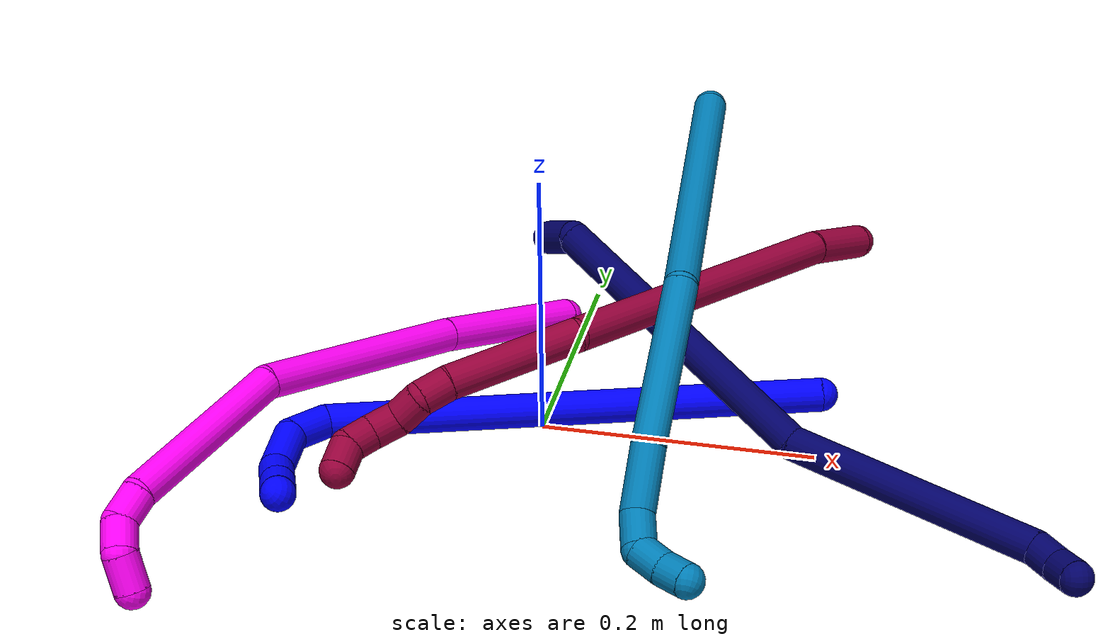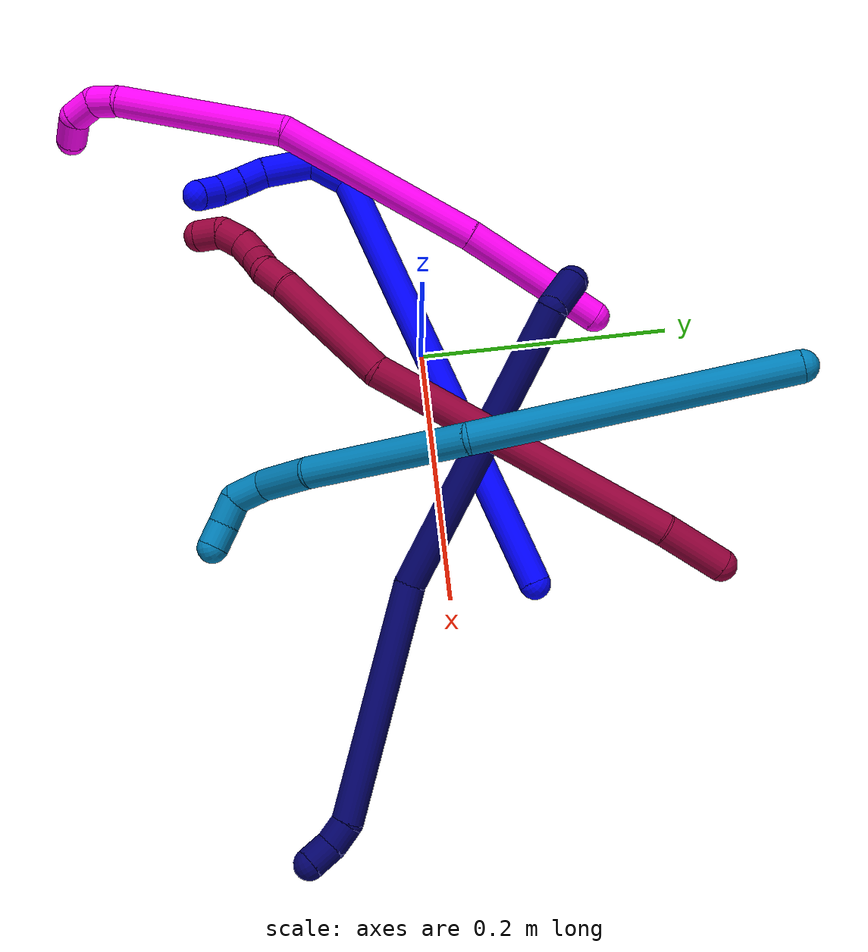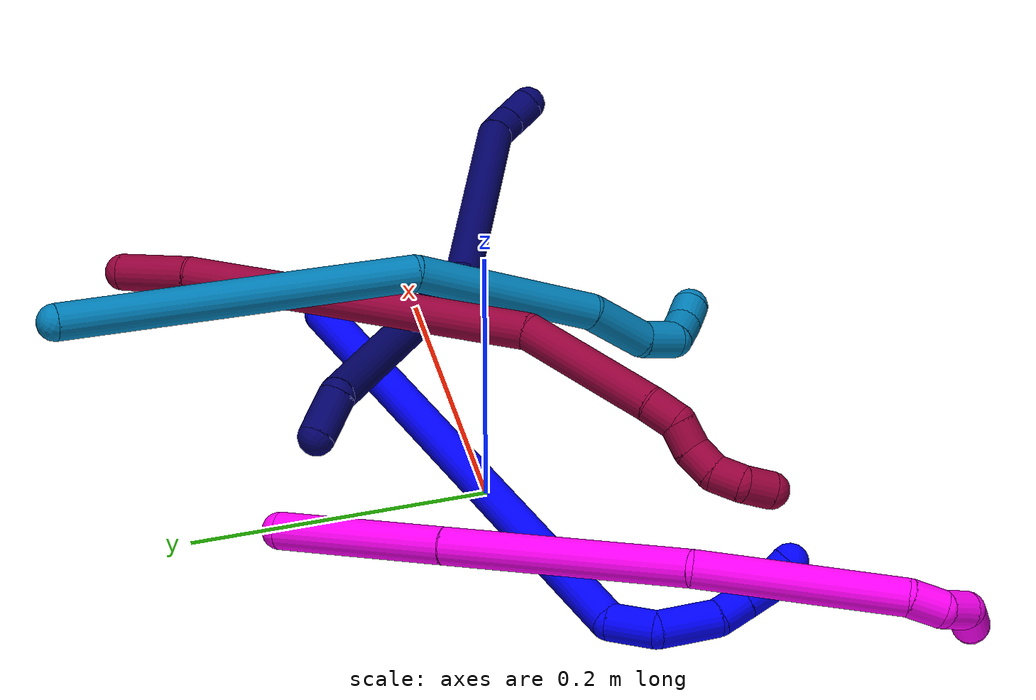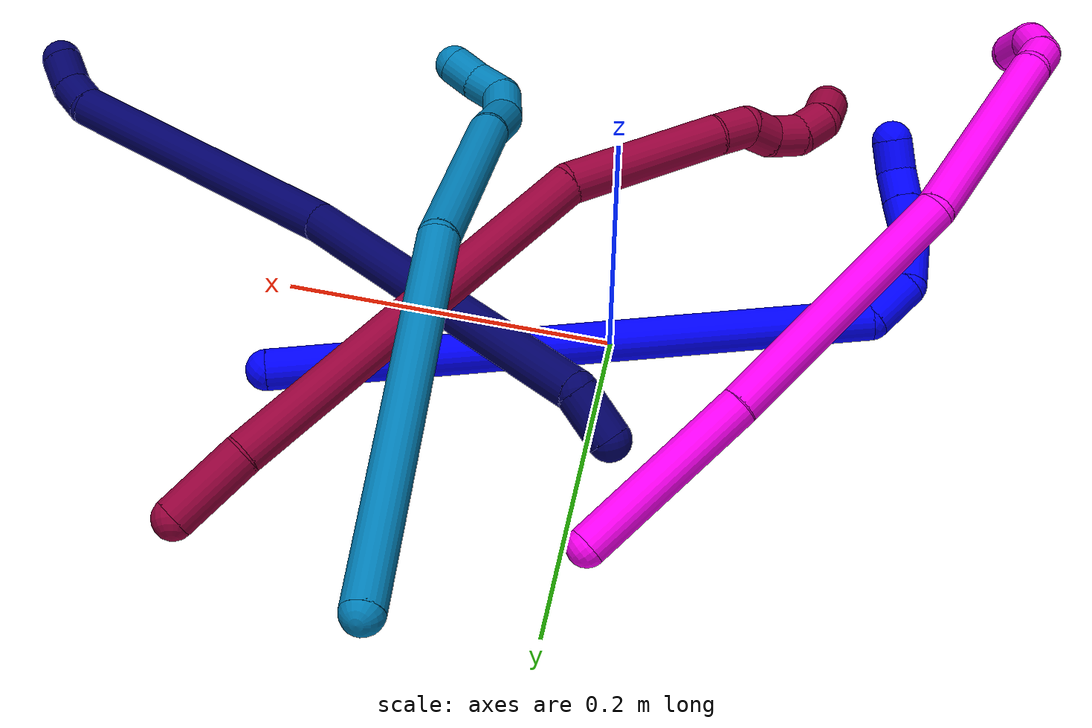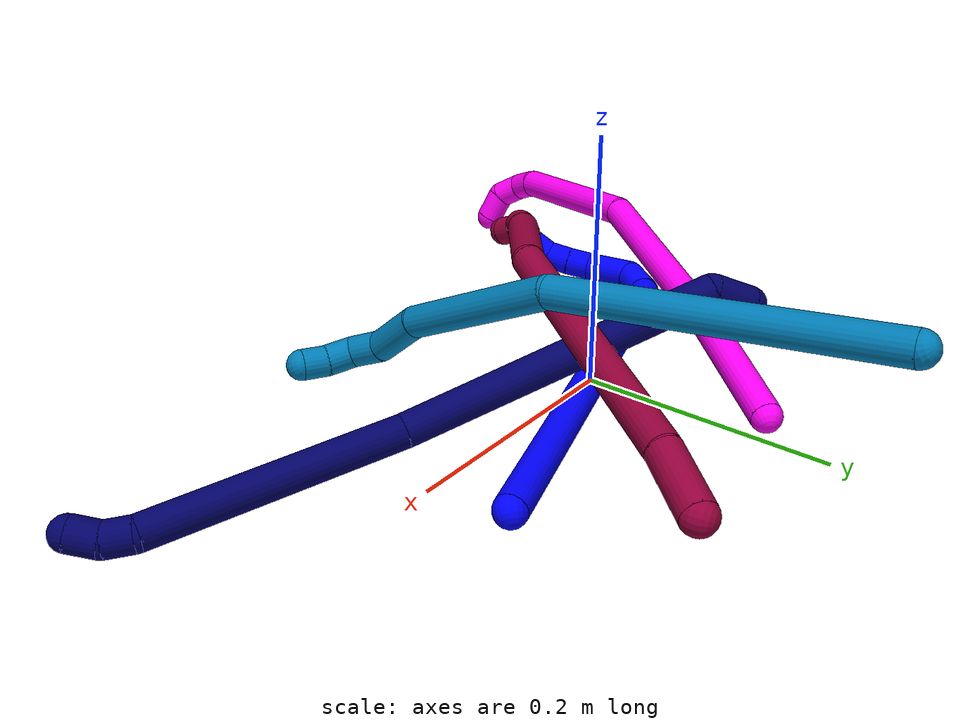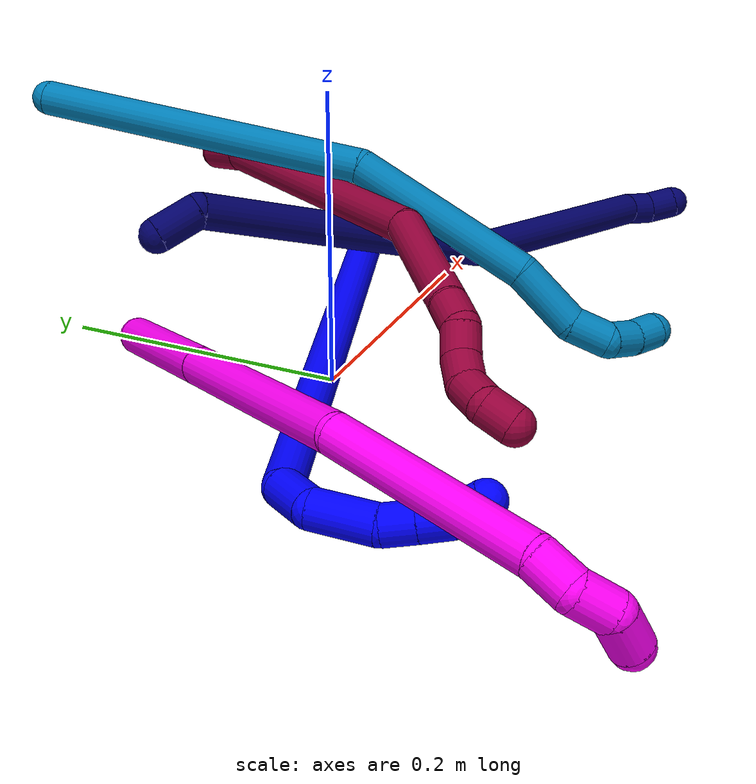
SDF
<sdf version="1.7">
 <world name="default">
  <model name="1">
   <static>0</static>
   <link name="1">
    <collision name="collision-cylinder-e_1_1_4">
     <pose>-0.13863 -0.039307 0.111932 0.337716 -0.86297 -0.156665</pose>
     <geometry><cylinder><radius>0.0125</radius><length>0.364922</length></cylinder></geometry>
     <surface>
      <friction><ode><mu>1.16</mu><mu2>1.16</mu2><slip1>0</slip1><slip2>0</slip2></ode></friction>
      <contact><ode><kp>1e+06</kp><kd>1</kd><max_vel>0</max_vel><min_depth>0.001</min_depth></ode></contact>
     </surface>
    </collision>
    <visual name="visual-cylinder-e_1_1_4">
     <pose>-0.13863 -0.039307 0.111932 0.337716 -0.86297 -0.156665</pose>
     <geometry><cylinder><radius>0.0125</radius><length>0.364922</length></cylinder></geometry>
     <material><ambient>0 0 1 1</ambient></material>
    </visual>
    <collision name="collision-cylinder-e_2_4_5">
     <pose>-0.280774 -0.087796 0.236641 0.623129 -0.219778 -0.071037</pose>
     <geometry><cylinder><radius>0.0125</radius><length>0.032243</length></cylinder></geometry>
     <surface>
      <friction><ode><mu>1.16</mu><mu2>1.16</mu2><slip1>0</slip1><slip2>0</slip2></ode></friction>
      <contact><ode><kp>1e+06</kp><kd>1</kd><max_vel>0</max_vel><min_depth>0.001</min_depth></ode></contact>
     </surface>
    </collision>
    <visual name="visual-cylinder-e_2_4_5">
     <pose>-0.280774 -0.087796 0.236641 0.623129 -0.219778 -0.071037</pose>
     <geometry><cylinder><radius>0.0125</radius><length>0.032243</length></cylinder></geometry>
     <material><ambient>0 0 1 1</ambient></material>
    </visual>
    <collision name="collision-cylinder-e_3_5_6">
     <pose>-0.277468 -0.113228 0.260163 0.986525 0.336753 0.182258</pose>
     <geometry><cylinder><radius>0.0125</radius><length>0.041281</length></cylinder></geometry>
     <surface>
      <friction><ode><mu>1.16</mu><mu2>1.16</mu2><slip1>0</slip1><slip2>0</slip2></ode></friction>
      <contact><ode><kp>1e+06</kp><kd>1</kd><max_vel>0</max_vel><min_depth>0.001</min_depth></ode></contact>
     </surface>
    </collision>
    <visual name="visual-cylinder-e_3_5_6">
     <pose>-0.277468 -0.113228 0.260163 0.986525 0.336753 0.182258</pose>
     <geometry><cylinder><radius>0.0125</radius><length>0.041281</length></cylinder></geometry>
     <material><ambient>0 0 1 1</ambient></material>
    </visual>
    <collision name="collision-cylinder-e_4_6_7">
     <pose>-0.263941 -0.135863 0.275853 0.911928 0.693061 0.350557</pose>
     <geometry><cylinder><radius>0.0125</radius><length>0.020996</length></cylinder></geometry>
     <surface>
      <friction><ode><mu>1.16</mu><mu2>1.16</mu2><slip1>0</slip1><slip2>0</slip2></ode></friction>
      <contact><ode><kp>1e+06</kp><kd>1</kd><max_vel>0</max_vel><min_depth>0.001</min_depth></ode></contact>
     </surface>
    </collision>
    <visual name="visual-cylinder-e_4_6_7">
     <pose>-0.263941 -0.135863 0.275853 0.911928 0.693061 0.350557</pose>
     <geometry><cylinder><radius>0.0125</radius><length>0.020996</length></cylinder></geometry>
     <material><ambient>0 0 1 1</ambient></material>
    </visual>
    <collision name="collision-cylinder-e_5_7_8">
     <pose>-0.250808 -0.148186 0.286008 0.850583 0.682861 0.319161</pose>
     <geometry><cylinder><radius>0.0125</radius><length>0.020367</length></cylinder></geometry>
     <surface>
      <friction><ode><mu>1.16</mu><mu2>1.16</mu2><slip1>0</slip1><slip2>0</slip2></ode></friction>
      <contact><ode><kp>1e+06</kp><kd>1</kd><max_vel>0</max_vel><min_depth>0.001</min_depth></ode></contact>
     </surface>
    </collision>
    <visual name="visual-cylinder-e_5_7_8">
     <pose>-0.250808 -0.148186 0.286008 0.850583 0.682861 0.319161</pose>
     <geometry><cylinder><radius>0.0125</radius><length>0.020367</length></cylinder></geometry>
     <material><ambient>0 0 1 1</ambient></material>
    </visual>
    <collision name="collision-cylinder-e_6_8_2">
     <pose>-0.237422 -0.156578 0.298108 0.342076 0.760672 0.137893</pose>
     <geometry><cylinder><radius>0.0125</radius><length>0.020191</length></cylinder></geometry>
     <surface>
      <friction><ode><mu>1.16</mu><mu2>1.16</mu2><slip1>0</slip1><slip2>0</slip2></ode></friction>
      <contact><ode><kp>1e+06</kp><kd>1</kd><max_vel>0</max_vel><min_depth>0.001</min_depth></ode></contact>
     </surface>
    </collision>
    <visual name="visual-cylinder-e_6_8_2">
     <pose>-0.237422 -0.156578 0.298108 0.342076 0.760672 0.137893</pose>
     <geometry><cylinder><radius>0.0125</radius><length>0.020191</length></cylinder></geometry>
     <material><ambient>0 0 1 1</ambient></material>
    </visual>
    <collision name="collision-sphere-2">
     <pose>-0.230462 -0.159031 0.304997 0 -0 0</pose>
     <geometry><sphere><radius>0.0125</radius></sphere></geometry>
     <surface>
      <friction><ode><mu>1.16</mu><mu2>1.16</mu2><slip1>0</slip1><slip2>0</slip2></ode></friction>
      <contact><ode><kp>1e+06</kp><kd>1</kd><max_vel>0</max_vel><min_depth>0.001</min_depth></ode></contact>
     </surface>
    </collision>
    <visual name="visual-sphere-2">
     <pose>-0.230462 -0.159031 0.304997 0 -0 0</pose>
     <geometry><sphere><radius>0.0125</radius></sphere></geometry>
     <material><ambient>0 0 1 1</ambient></material>
    </visual>
    <collision name="collision-sphere-4">
     <pose>-0.277259 -0.078614 0.223864 0 -0 0</pose>
     <geometry><sphere><radius>0.0125</radius></sphere></geometry>
     <surface>
      <friction><ode><mu>1.16</mu><mu2>1.16</mu2><slip1>0</slip1><slip2>0</slip2></ode></friction>
      <contact><ode><kp>1e+06</kp><kd>1</kd><max_vel>0</max_vel><min_depth>0.001</min_depth></ode></contact>
     </surface>
    </collision>
    <visual name="visual-sphere-4">
     <pose>-0.277259 -0.078614 0.223864 0 -0 0</pose>
     <geometry><sphere><radius>0.0125</radius></sphere></geometry>
     <material><ambient>0 0 1 1</ambient></material>
    </visual>
    <collision name="collision-sphere-1">
     <geometry><sphere><radius>0.0125</radius></sphere></geometry>
     <surface>
      <friction><ode><mu>1.16</mu><mu2>1.16</mu2><slip1>0</slip1><slip2>0</slip2></ode></friction>
      <contact><ode><kp>1e+06</kp><kd>1</kd><max_vel>0</max_vel><min_depth>0.001</min_depth></ode></contact>
     </surface>
    </collision>
    <visual name="visual-sphere-1">
     <geometry><sphere><radius>0.0125</radius></sphere></geometry>
     <material><ambient>0 0 1 1</ambient></material>
    </visual>
    <collision name="collision-sphere-8">
     <pose>-0.244382 -0.154125 0.291218 0 -0 0</pose>
     <geometry><sphere><radius>0.0125</radius></sphere></geometry>
     <surface>
      <friction><ode><mu>1.16</mu><mu2>1.16</mu2><slip1>0</slip1><slip2>0</slip2></ode></friction>
      <contact><ode><kp>1e+06</kp><kd>1</kd><max_vel>0</max_vel><min_depth>0.001</min_depth></ode></contact>
     </surface>
    </collision>
    <visual name="visual-sphere-8">
     <pose>-0.244382 -0.154125 0.291218 0 -0 0</pose>
     <geometry><sphere><radius>0.0125</radius></sphere></geometry>
     <material><ambient>0 0 1 1</ambient></material>
    </visual>
    <collision name="collision-sphere-5">
     <pose>-0.284289 -0.096978 0.249418 0 -0 0</pose>
     <geometry><sphere><radius>0.0125</radius></sphere></geometry>
     <surface>
      <friction><ode><mu>1.16</mu><mu2>1.16</mu2><slip1>0</slip1><slip2>0</slip2></ode></friction>
      <contact><ode><kp>1e+06</kp><kd>1</kd><max_vel>0</max_vel><min_depth>0.001</min_depth></ode></contact>
     </surface>
    </collision>
    <visual name="visual-sphere-5">
     <pose>-0.284289 -0.096978 0.249418 0 -0 0</pose>
     <geometry><sphere><radius>0.0125</radius></sphere></geometry>
     <material><ambient>0 0 1 1</ambient></material>
    </visual>
    <collision name="collision-sphere-6">
     <pose>-0.270648 -0.129477 0.270909 0 -0 0</pose>
     <geometry><sphere><radius>0.0125</radius></sphere></geometry>
     <surface>
      <friction><ode><mu>1.16</mu><mu2>1.16</mu2><slip1>0</slip1><slip2>0</slip2></ode></friction>
      <contact><ode><kp>1e+06</kp><kd>1</kd><max_vel>0</max_vel><min_depth>0.001</min_depth></ode></contact>
     </surface>
    </collision>
    <visual name="visual-sphere-6">
     <pose>-0.270648 -0.129477 0.270909 0 -0 0</pose>
     <geometry><sphere><radius>0.0125</radius></sphere></geometry>
     <material><ambient>0 0 1 1</ambient></material>
    </visual>
    <collision name="collision-sphere-7">
     <pose>-0.257234 -0.142248 0.280797 0 -0 0</pose>
     <geometry><sphere><radius>0.0125</radius></sphere></geometry>
     <surface>
      <friction><ode><mu>1.16</mu><mu2>1.16</mu2><slip1>0</slip1><slip2>0</slip2></ode></friction>
      <contact><ode><kp>1e+06</kp><kd>1</kd><max_vel>0</max_vel><min_depth>0.001</min_depth></ode></contact>
     </surface>
    </collision>
    <visual name="visual-sphere-7">
     <pose>-0.257234 -0.142248 0.280797 0 -0 0</pose>
     <geometry><sphere><radius>0.0125</radius></sphere></geometry>
     <material><ambient>0 0 1 1</ambient></material>
    </visual>
    <inertial>
     <pose>-0.17308 -0.061762 0.153705 0 -0 0</pose>
     <mass>0.5</mass>
     <inertia>
      <ixx>0.002196</ixx>
      <ixy>0</ixy>
      <ixz>0</ixz>
      <iyy>0.003536</iyy>
      <iyz>0</iyz>
      <izz>0.003993</izz>
     </inertia>
    </inertial>
   </link>
   <pose>0.195805 0.067529 0.011492 0.768858 -0.36561 -0.31183</pose>
  </model>
  <model name="7">
   <static>0</static>
   <link name="7">
    <collision name="collision-cylinder-e_1_1_4">
     <pose>0.007251 -0.012944 0.006146 1.12754 0.468454 0.299442</pose>
     <geometry><cylinder><radius>0.0125</radius><length>0.032118</length></cylinder></geometry>
     <surface>
      <friction><ode><mu>1.16</mu><mu2>1.16</mu2><slip1>0</slip1><slip2>0</slip2></ode></friction>
      <contact><ode><kp>1e+06</kp><kd>1</kd><max_vel>0</max_vel><min_depth>0.001</min_depth></ode></contact>
     </surface>
    </collision>
    <visual name="visual-cylinder-e_1_1_4">
     <pose>0.007251 -0.012944 0.006146 1.12754 0.468454 0.299442</pose>
     <geometry><cylinder><radius>0.0125</radius><length>0.032118</length></cylinder></geometry>
     <material><ambient>0.003922 0 0.403922 1</ambient></material>
    </visual>
    <collision name="collision-cylinder-e_2_4_5">
     <pose>0.111622 -0.051093 0.076488 0.374122 0.95331 0.194851</pose>
     <geometry><cylinder><radius>0.0125</radius><length>0.238233</length></cylinder></geometry>
     <surface>
      <friction><ode><mu>1.16</mu><mu2>1.16</mu2><slip1>0</slip1><slip2>0</slip2></ode></friction>
      <contact><ode><kp>1e+06</kp><kd>1</kd><max_vel>0</max_vel><min_depth>0.001</min_depth></ode></contact>
     </surface>
    </collision>
    <visual name="visual-cylinder-e_2_4_5">
     <pose>0.111622 -0.051093 0.076488 0.374122 0.95331 0.194851</pose>
     <geometry><cylinder><radius>0.0125</radius><length>0.238233</length></cylinder></geometry>
     <material><ambient>0.003922 0 0.403922 1</ambient></material>
    </visual>
    <collision name="collision-cylinder-e_3_5_6">
     <pose>0.26395 -0.109962 0.208358 0.461607 0.630845 0.153064</pose>
     <geometry><cylinder><radius>0.0125</radius><length>0.187199</length></cylinder></geometry>
     <surface>
      <friction><ode><mu>1.16</mu><mu2>1.16</mu2><slip1>0</slip1><slip2>0</slip2></ode></friction>
      <contact><ode><kp>1e+06</kp><kd>1</kd><max_vel>0</max_vel><min_depth>0.001</min_depth></ode></contact>
     </surface>
    </collision>
    <visual name="visual-cylinder-e_3_5_6">
     <pose>0.26395 -0.109962 0.208358 0.461607 0.630845 0.153064</pose>
     <geometry><cylinder><radius>0.0125</radius><length>0.187199</length></cylinder></geometry>
     <material><ambient>0.003922 0 0.403922 1</ambient></material>
    </visual>
    <collision name="collision-cylinder-e_4_6_7">
     <pose>0.327436 -0.148185 0.280487 0.796863 0.914595 0.408507</pose>
     <geometry><cylinder><radius>0.0125</radius><length>0.020899</length></cylinder></geometry>
     <surface>
      <friction><ode><mu>1.16</mu><mu2>1.16</mu2><slip1>0</slip1><slip2>0</slip2></ode></friction>
      <contact><ode><kp>1e+06</kp><kd>1</kd><max_vel>0</max_vel><min_depth>0.001</min_depth></ode></contact>
     </surface>
    </collision>
    <visual name="visual-cylinder-e_4_6_7">
     <pose>0.327436 -0.148185 0.280487 0.796863 0.914595 0.408507</pose>
     <geometry><cylinder><radius>0.0125</radius><length>0.020899</length></cylinder></geometry>
     <material><ambient>0.003922 0 0.403922 1</ambient></material>
    </visual>
    <collision name="collision-cylinder-e_5_7_2">
     <pose>0.343191 -0.160256 0.286892 1.31696 0.766762 0.604955</pose>
     <geometry><cylinder><radius>0.0125</radius><length>0.021551</length></cylinder></geometry>
     <surface>
      <friction><ode><mu>1.16</mu><mu2>1.16</mu2><slip1>0</slip1><slip2>0</slip2></ode></friction>
      <contact><ode><kp>1e+06</kp><kd>1</kd><max_vel>0</max_vel><min_depth>0.001</min_depth></ode></contact>
     </surface>
    </collision>
    <visual name="visual-cylinder-e_5_7_2">
     <pose>0.343191 -0.160256 0.286892 1.31696 0.766762 0.604955</pose>
     <geometry><cylinder><radius>0.0125</radius><length>0.021551</length></cylinder></geometry>
     <material><ambient>0.003922 0 0.403922 1</ambient></material>
    </visual>
    <collision name="collision-sphere-2">
     <pose>0.350667 -0.167767 0.288841 0 -0 0</pose>
     <geometry><sphere><radius>0.0125</radius></sphere></geometry>
     <surface>
      <friction><ode><mu>1.16</mu><mu2>1.16</mu2><slip1>0</slip1><slip2>0</slip2></ode></friction>
      <contact><ode><kp>1e+06</kp><kd>1</kd><max_vel>0</max_vel><min_depth>0.001</min_depth></ode></contact>
     </surface>
    </collision>
    <visual name="visual-sphere-2">
     <pose>0.350667 -0.167767 0.288841 0 -0 0</pose>
     <geometry><sphere><radius>0.0125</radius></sphere></geometry>
     <material><ambient>0.003922 0 0.403922 1</ambient></material>
    </visual>
    <collision name="collision-sphere-7">
     <pose>0.335715 -0.152745 0.284943 0 -0 0</pose>
     <geometry><sphere><radius>0.0125</radius></sphere></geometry>
     <surface>
      <friction><ode><mu>1.16</mu><mu2>1.16</mu2><slip1>0</slip1><slip2>0</slip2></ode></friction>
      <contact><ode><kp>1e+06</kp><kd>1</kd><max_vel>0</max_vel><min_depth>0.001</min_depth></ode></contact>
     </surface>
    </collision>
    <visual name="visual-sphere-7">
     <pose>0.335715 -0.152745 0.284943 0 -0 0</pose>
     <geometry><sphere><radius>0.0125</radius></sphere></geometry>
     <material><ambient>0.003922 0 0.403922 1</ambient></material>
    </visual>
    <collision name="collision-sphere-6">
     <pose>0.319157 -0.143626 0.276031 0 -0 0</pose>
     <geometry><sphere><radius>0.0125</radius></sphere></geometry>
     <surface>
      <friction><ode><mu>1.16</mu><mu2>1.16</mu2><slip1>0</slip1><slip2>0</slip2></ode></friction>
      <contact><ode><kp>1e+06</kp><kd>1</kd><max_vel>0</max_vel><min_depth>0.001</min_depth></ode></contact>
     </surface>
    </collision>
    <visual name="visual-sphere-6">
     <pose>0.319157 -0.143626 0.276031 0 -0 0</pose>
     <geometry><sphere><radius>0.0125</radius></sphere></geometry>
     <material><ambient>0.003922 0 0.403922 1</ambient></material>
    </visual>
    <collision name="collision-sphere-5">
     <pose>0.208742 -0.076297 0.140684 0 -0 0</pose>
     <geometry><sphere><radius>0.0125</radius></sphere></geometry>
     <surface>
      <friction><ode><mu>1.16</mu><mu2>1.16</mu2><slip1>0</slip1><slip2>0</slip2></ode></friction>
      <contact><ode><kp>1e+06</kp><kd>1</kd><max_vel>0</max_vel><min_depth>0.001</min_depth></ode></contact>
     </surface>
    </collision>
    <visual name="visual-sphere-5">
     <pose>0.208742 -0.076297 0.140684 0 -0 0</pose>
     <geometry><sphere><radius>0.0125</radius></sphere></geometry>
     <material><ambient>0.003922 0 0.403922 1</ambient></material>
    </visual>
    <collision name="collision-sphere-1">
     <geometry><sphere><radius>0.0125</radius></sphere></geometry>
     <surface>
      <friction><ode><mu>1.16</mu><mu2>1.16</mu2><slip1>0</slip1><slip2>0</slip2></ode></friction>
      <contact><ode><kp>1e+06</kp><kd>1</kd><max_vel>0</max_vel><min_depth>0.001</min_depth></ode></contact>
     </surface>
    </collision>
    <visual name="visual-sphere-1">
     <geometry><sphere><radius>0.0125</radius></sphere></geometry>
     <material><ambient>0.003922 0 0.403922 1</ambient></material>
    </visual>
    <collision name="collision-sphere-4">
     <pose>0.014502 -0.025888 0.012291 0 -0 0</pose>
     <geometry><sphere><radius>0.0125</radius></sphere></geometry>
     <surface>
      <friction><ode><mu>1.16</mu><mu2>1.16</mu2><slip1>0</slip1><slip2>0</slip2></ode></friction>
      <contact><ode><kp>1e+06</kp><kd>1</kd><max_vel>0</max_vel><min_depth>0.001</min_depth></ode></contact>
     </surface>
    </collision>
    <visual name="visual-sphere-4">
     <pose>0.014502 -0.025888 0.012291 0 -0 0</pose>
     <geometry><sphere><radius>0.0125</radius></sphere></geometry>
     <material><ambient>0.003922 0 0.403922 1</ambient></material>
    </visual>
    <inertial>
     <pose>0.18095 -0.079446 0.138936 0 -0 0</pose>
     <mass>0.5</mass>
     <inertia>
      <ixx>0.001318</ixx>
      <ixy>0</ixy>
      <ixz>0</ixz>
      <iyy>0.001804</iyy>
      <iyz>0</iyz>
      <izz>-0.00079</izz>
     </inertia>
    </inertial>
   </link>
   <pose>-0.020948 0.117548 0.093057 -1.68746 0.570558 -1.23812</pose>
  </model>
  <model name="8">
   <static>0</static>
   <link name="8">
    <collision name="collision-cylinder-e_1_1_4">
     <pose>-0.016916 -0.009461 0.016812 0.512584 -0.719871 -0.196602</pose>
     <geometry><cylinder><radius>0.0125</radius><length>0.051316</length></cylinder></geometry>
     <surface>
      <friction><ode><mu>1.16</mu><mu2>1.16</mu2><slip1>0</slip1><slip2>0</slip2></ode></friction>
      <contact><ode><kp>1e+06</kp><kd>1</kd><max_vel>0</max_vel><min_depth>0.001</min_depth></ode></contact>
     </surface>
    </collision>
    <visual name="visual-cylinder-e_1_1_4">
     <pose>-0.016916 -0.009461 0.016812 0.512584 -0.719871 -0.196602</pose>
     <geometry><cylinder><radius>0.0125</radius><length>0.051316</length></cylinder></geometry>
     <material><ambient>0.584314 0 0.227451 1</ambient></material>
    </visual>
    <collision name="collision-cylinder-e_2_4_5">
     <pose>-0.102212 -0.079035 0.115961 0.63063 -0.590828 -0.197888</pose>
     <geometry><cylinder><radius>0.0125</radius><length>0.245508</length></cylinder></geometry>
     <surface>
      <friction><ode><mu>1.16</mu><mu2>1.16</mu2><slip1>0</slip1><slip2>0</slip2></ode></friction>
      <contact><ode><kp>1e+06</kp><kd>1</kd><max_vel>0</max_vel><min_depth>0.001</min_depth></ode></contact>
     </surface>
    </collision>
    <visual name="visual-cylinder-e_2_4_5">
     <pose>-0.102212 -0.079035 0.115961 0.63063 -0.590828 -0.197888</pose>
     <geometry><cylinder><radius>0.0125</radius><length>0.245508</length></cylinder></geometry>
     <material><ambient>0.584314 0 0.227451 1</ambient></material>
    </visual>
    <collision name="collision-cylinder-e_3_5_6">
     <pose>-0.197525 -0.175338 0.21887 1.05391 -0.574246 -0.340287</pose>
     <geometry><cylinder><radius>0.0125</radius><length>0.099165</length></cylinder></geometry>
     <surface>
      <friction><ode><mu>1.16</mu><mu2>1.16</mu2><slip1>0</slip1><slip2>0</slip2></ode></friction>
      <contact><ode><kp>1e+06</kp><kd>1</kd><max_vel>0</max_vel><min_depth>0.001</min_depth></ode></contact>
     </surface>
    </collision>
    <visual name="visual-cylinder-e_3_5_6">
     <pose>-0.197525 -0.175338 0.21887 1.05391 -0.574246 -0.340287</pose>
     <geometry><cylinder><radius>0.0125</radius><length>0.099165</length></cylinder></geometry>
     <material><ambient>0.584314 0 0.227451 1</ambient></material>
    </visual>
    <collision name="collision-cylinder-e_4_6_7">
     <pose>-0.228947 -0.220338 0.244291 1.06769 -0.41987 -0.250573</pose>
     <geometry><cylinder><radius>0.0125</radius><length>0.022024</length></cylinder></geometry>
     <surface>
      <friction><ode><mu>1.16</mu><mu2>1.16</mu2><slip1>0</slip1><slip2>0</slip2></ode></friction>
      <contact><ode><kp>1e+06</kp><kd>1</kd><max_vel>0</max_vel><min_depth>0.001</min_depth></ode></contact>
     </surface>
    </collision>
    <visual name="visual-cylinder-e_4_6_7">
     <pose>-0.228947 -0.220338 0.244291 1.06769 -0.41987 -0.250573</pose>
     <geometry><cylinder><radius>0.0125</radius><length>0.022024</length></cylinder></geometry>
     <material><ambient>0.584314 0 0.227451 1</ambient></material>
    </visual>
    <collision name="collision-cylinder-e_5_7_8">
     <pose>-0.234129 -0.239407 0.249832 1.50338 -0.067256 -0.062871</pose>
     <geometry><cylinder><radius>0.0125</radius><length>0.02061</length></cylinder></geometry>
     <surface>
      <friction><ode><mu>1.16</mu><mu2>1.16</mu2><slip1>0</slip1><slip2>0</slip2></ode></friction>
      <contact><ode><kp>1e+06</kp><kd>1</kd><max_vel>0</max_vel><min_depth>0.001</min_depth></ode></contact>
     </surface>
    </collision>
    <visual name="visual-cylinder-e_5_7_8">
     <pose>-0.234129 -0.239407 0.249832 1.50338 -0.067256 -0.062871</pose>
     <geometry><cylinder><radius>0.0125</radius><length>0.02061</length></cylinder></geometry>
     <material><ambient>0.584314 0 0.227451 1</ambient></material>
    </visual>
    <collision name="collision-cylinder-e_6_8_9">
     <pose>-0.238992 -0.258933 0.253249 1.28491 -0.407558 -0.306865</pose>
     <geometry><cylinder><radius>0.0125</radius><length>0.021044</length></cylinder></geometry>
     <surface>
      <friction><ode><mu>1.16</mu><mu2>1.16</mu2><slip1>0</slip1><slip2>0</slip2></ode></friction>
      <contact><ode><kp>1e+06</kp><kd>1</kd><max_vel>0</max_vel><min_depth>0.001</min_depth></ode></contact>
     </surface>
    </collision>
    <visual name="visual-cylinder-e_6_8_9">
     <pose>-0.238992 -0.258933 0.253249 1.28491 -0.407558 -0.306865</pose>
     <geometry><cylinder><radius>0.0125</radius><length>0.021044</length></cylinder></geometry>
     <material><ambient>0.584314 0 0.227451 1</ambient></material>
    </visual>
    <collision name="collision-cylinder-e_7_9_10">
     <pose>-0.247414 -0.274837 0.262191 0.817886 -0.437324 -0.192013</pose>
     <geometry><cylinder><radius>0.0125</radius><length>0.020077</length></cylinder></geometry>
     <surface>
      <friction><ode><mu>1.16</mu><mu2>1.16</mu2><slip1>0</slip1><slip2>0</slip2></ode></friction>
      <contact><ode><kp>1e+06</kp><kd>1</kd><max_vel>0</max_vel><min_depth>0.001</min_depth></ode></contact>
     </surface>
    </collision>
    <visual name="visual-cylinder-e_7_9_10">
     <pose>-0.247414 -0.274837 0.262191 0.817886 -0.437324 -0.192013</pose>
     <geometry><cylinder><radius>0.0125</radius><length>0.020077</length></cylinder></geometry>
     <material><ambient>0.584314 0 0.227451 1</ambient></material>
    </visual>
    <collision name="collision-cylinder-e_8_10_2">
     <pose>-0.250578 -0.287051 0.276792 0.587177 0.1076 0.032559</pose>
     <geometry><cylinder><radius>0.0125</radius><length>0.020256</length></cylinder></geometry>
     <surface>
      <friction><ode><mu>1.16</mu><mu2>1.16</mu2><slip1>0</slip1><slip2>0</slip2></ode></friction>
      <contact><ode><kp>1e+06</kp><kd>1</kd><max_vel>0</max_vel><min_depth>0.001</min_depth></ode></contact>
     </surface>
    </collision>
    <visual name="visual-cylinder-e_8_10_2">
     <pose>-0.250578 -0.287051 0.276792 0.587177 0.1076 0.032559</pose>
     <geometry><cylinder><radius>0.0125</radius><length>0.020256</length></cylinder></geometry>
     <material><ambient>0.584314 0 0.227451 1</ambient></material>
    </visual>
    <collision name="collision-sphere-2">
     <pose>-0.24949 -0.29263 0.285175 0 -0 0</pose>
     <geometry><sphere><radius>0.0125</radius></sphere></geometry>
     <surface>
      <friction><ode><mu>1.16</mu><mu2>1.16</mu2><slip1>0</slip1><slip2>0</slip2></ode></friction>
      <contact><ode><kp>1e+06</kp><kd>1</kd><max_vel>0</max_vel><min_depth>0.001</min_depth></ode></contact>
     </surface>
    </collision>
    <visual name="visual-sphere-2">
     <pose>-0.24949 -0.29263 0.285175 0 -0 0</pose>
     <geometry><sphere><radius>0.0125</radius></sphere></geometry>
     <material><ambient>0.584314 0 0.227451 1</ambient></material>
    </visual>
    <collision name="collision-sphere-10">
     <pose>-0.251666 -0.281473 0.268409 0 -0 0</pose>
     <geometry><sphere><radius>0.0125</radius></sphere></geometry>
     <surface>
      <friction><ode><mu>1.16</mu><mu2>1.16</mu2><slip1>0</slip1><slip2>0</slip2></ode></friction>
      <contact><ode><kp>1e+06</kp><kd>1</kd><max_vel>0</max_vel><min_depth>0.001</min_depth></ode></contact>
     </surface>
    </collision>
    <visual name="visual-sphere-10">
     <pose>-0.251666 -0.281473 0.268409 0 -0 0</pose>
     <geometry><sphere><radius>0.0125</radius></sphere></geometry>
     <material><ambient>0.584314 0 0.227451 1</ambient></material>
    </visual>
    <collision name="collision-sphere-9">
     <pose>-0.243162 -0.268201 0.255973 0 -0 0</pose>
     <geometry><sphere><radius>0.0125</radius></sphere></geometry>
     <surface>
      <friction><ode><mu>1.16</mu><mu2>1.16</mu2><slip1>0</slip1><slip2>0</slip2></ode></friction>
      <contact><ode><kp>1e+06</kp><kd>1</kd><max_vel>0</max_vel><min_depth>0.001</min_depth></ode></contact>
     </surface>
    </collision>
    <visual name="visual-sphere-9">
     <pose>-0.243162 -0.268201 0.255973 0 -0 0</pose>
     <geometry><sphere><radius>0.0125</radius></sphere></geometry>
     <material><ambient>0.584314 0 0.227451 1</ambient></material>
    </visual>
    <collision name="collision-sphere-4">
     <pose>-0.033832 -0.018923 0.033625 0 -0 0</pose>
     <geometry><sphere><radius>0.0125</radius></sphere></geometry>
     <surface>
      <friction><ode><mu>1.16</mu><mu2>1.16</mu2><slip1>0</slip1><slip2>0</slip2></ode></friction>
      <contact><ode><kp>1e+06</kp><kd>1</kd><max_vel>0</max_vel><min_depth>0.001</min_depth></ode></contact>
     </surface>
    </collision>
    <visual name="visual-sphere-4">
     <pose>-0.033832 -0.018923 0.033625 0 -0 0</pose>
     <geometry><sphere><radius>0.0125</radius></sphere></geometry>
     <material><ambient>0.584314 0 0.227451 1</ambient></material>
    </visual>
    <collision name="collision-sphere-1">
     <geometry><sphere><radius>0.0125</radius></sphere></geometry>
     <surface>
      <friction><ode><mu>1.16</mu><mu2>1.16</mu2><slip1>0</slip1><slip2>0</slip2></ode></friction>
      <contact><ode><kp>1e+06</kp><kd>1</kd><max_vel>0</max_vel><min_depth>0.001</min_depth></ode></contact>
     </surface>
    </collision>
    <visual name="visual-sphere-1">
     <geometry><sphere><radius>0.0125</radius></sphere></geometry>
     <material><ambient>0.584314 0 0.227451 1</ambient></material>
    </visual>
    <collision name="collision-sphere-8">
     <pose>-0.234821 -0.249665 0.250524 0 -0 0</pose>
     <geometry><sphere><radius>0.0125</radius></sphere></geometry>
     <surface>
      <friction><ode><mu>1.16</mu><mu2>1.16</mu2><slip1>0</slip1><slip2>0</slip2></ode></friction>
      <contact><ode><kp>1e+06</kp><kd>1</kd><max_vel>0</max_vel><min_depth>0.001</min_depth></ode></contact>
     </surface>
    </collision>
    <visual name="visual-sphere-8">
     <pose>-0.234821 -0.249665 0.250524 0 -0 0</pose>
     <geometry><sphere><radius>0.0125</radius></sphere></geometry>
     <material><ambient>0.584314 0 0.227451 1</ambient></material>
    </visual>
    <collision name="collision-sphere-5">
     <pose>-0.170592 -0.139147 0.198298 0 -0 0</pose>
     <geometry><sphere><radius>0.0125</radius></sphere></geometry>
     <surface>
      <friction><ode><mu>1.16</mu><mu2>1.16</mu2><slip1>0</slip1><slip2>0</slip2></ode></friction>
      <contact><ode><kp>1e+06</kp><kd>1</kd><max_vel>0</max_vel><min_depth>0.001</min_depth></ode></contact>
     </surface>
    </collision>
    <visual name="visual-sphere-5">
     <pose>-0.170592 -0.139147 0.198298 0 -0 0</pose>
     <geometry><sphere><radius>0.0125</radius></sphere></geometry>
     <material><ambient>0.584314 0 0.227451 1</ambient></material>
    </visual>
    <collision name="collision-sphere-6">
     <pose>-0.224458 -0.211529 0.239442 0 -0 0</pose>
     <geometry><sphere><radius>0.0125</radius></sphere></geometry>
     <surface>
      <friction><ode><mu>1.16</mu><mu2>1.16</mu2><slip1>0</slip1><slip2>0</slip2></ode></friction>
      <contact><ode><kp>1e+06</kp><kd>1</kd><max_vel>0</max_vel><min_depth>0.001</min_depth></ode></contact>
     </surface>
    </collision>
    <visual name="visual-sphere-6">
     <pose>-0.224458 -0.211529 0.239442 0 -0 0</pose>
     <geometry><sphere><radius>0.0125</radius></sphere></geometry>
     <material><ambient>0.584314 0 0.227451 1</ambient></material>
    </visual>
    <collision name="collision-sphere-7">
     <pose>-0.233436 -0.229148 0.249139 0 -0 0</pose>
     <geometry><sphere><radius>0.0125</radius></sphere></geometry>
     <surface>
      <friction><ode><mu>1.16</mu><mu2>1.16</mu2><slip1>0</slip1><slip2>0</slip2></ode></friction>
      <contact><ode><kp>1e+06</kp><kd>1</kd><max_vel>0</max_vel><min_depth>0.001</min_depth></ode></contact>
     </surface>
    </collision>
    <visual name="visual-sphere-7">
     <pose>-0.233436 -0.229148 0.249139 0 -0 0</pose>
     <geometry><sphere><radius>0.0125</radius></sphere></geometry>
     <material><ambient>0.584314 0 0.227451 1</ambient></material>
    </visual>
    <inertial>
     <pose>-0.140979 -0.12769 0.155532 0 -0 0</pose>
     <mass>0.5</mass>
     <inertia>
      <ixx>0.000847</ixx>
      <ixy>0</ixy>
      <ixz>0</ixz>
      <iyy>0.000881</iyy>
      <iyz>0</iyz>
      <izz>0.001453</izz>
     </inertia>
    </inertial>
   </link>
   <pose>0.203948 0.202611 0.069782 1.4356 0.748156 0.136755</pose>
  </model>
  <model name="9">
   <static>0</static>
   <link name="9">
    <collision name="collision-cylinder-e_1_1_4">
     <pose>0.027178 -0.04694 0.110727 0.400958 0.222253 0.045343</pose>
     <geometry><cylinder><radius>0.0125</radius><length>0.246597</length></cylinder></geometry>
     <surface>
      <friction><ode><mu>1.16</mu><mu2>1.16</mu2><slip1>0</slip1><slip2>0</slip2></ode></friction>
      <contact><ode><kp>1e+06</kp><kd>1</kd><max_vel>0</max_vel><min_depth>0.001</min_depth></ode></contact>
     </surface>
    </collision>
    <visual name="visual-cylinder-e_1_1_4">
     <pose>0.027178 -0.04694 0.110727 0.400958 0.222253 0.045343</pose>
     <geometry><cylinder><radius>0.0125</radius><length>0.246597</length></cylinder></geometry>
     <material><ambient>0 0.490196 0.709804 1</ambient></material>
    </visual>
    <collision name="collision-cylinder-e_2_4_5">
     <pose>0.057937 -0.099479 0.288508 0.083315 0.053163 0.002216</pose>
     <geometry><cylinder><radius>0.0125</radius><length>0.134765</length></cylinder></geometry>
     <surface>
      <friction><ode><mu>1.16</mu><mu2>1.16</mu2><slip1>0</slip1><slip2>0</slip2></ode></friction>
      <contact><ode><kp>1e+06</kp><kd>1</kd><max_vel>0</max_vel><min_depth>0.001</min_depth></ode></contact>
     </surface>
    </collision>
    <visual name="visual-cylinder-e_2_4_5">
     <pose>0.057937 -0.099479 0.288508 0.083315 0.053163 0.002216</pose>
     <geometry><cylinder><radius>0.0125</radius><length>0.134765</length></cylinder></geometry>
     <material><ambient>0 0.490196 0.709804 1</ambient></material>
    </visual>
    <collision name="collision-cylinder-e_3_5_6">
     <pose>0.058548 -0.102125 0.37931 -0.123741 -0.123449 0.007657</pose>
     <geometry><cylinder><radius>0.0125</radius><length>0.048229</length></cylinder></geometry>
     <surface>
      <friction><ode><mu>1.16</mu><mu2>1.16</mu2><slip1>0</slip1><slip2>0</slip2></ode></friction>
      <contact><ode><kp>1e+06</kp><kd>1</kd><max_vel>0</max_vel><min_depth>0.001</min_depth></ode></contact>
     </surface>
    </collision>
    <visual name="visual-cylinder-e_3_5_6">
     <pose>0.058548 -0.102125 0.37931 -0.123741 -0.123449 0.007657</pose>
     <geometry><cylinder><radius>0.0125</radius><length>0.048229</length></cylinder></geometry>
     <material><ambient>0 0.490196 0.709804 1</ambient></material>
    </visual>
    <collision name="collision-cylinder-e_4_6_7">
     <pose>0.054494 -0.102982 0.416433 0.277601 -0.077868 -0.010883</pose>
     <geometry><cylinder><radius>0.0125</radius><length>0.027898</length></cylinder></geometry>
     <surface>
      <friction><ode><mu>1.16</mu><mu2>1.16</mu2><slip1>0</slip1><slip2>0</slip2></ode></friction>
      <contact><ode><kp>1e+06</kp><kd>1</kd><max_vel>0</max_vel><min_depth>0.001</min_depth></ode></contact>
     </surface>
    </collision>
    <visual name="visual-cylinder-e_4_6_7">
     <pose>0.054494 -0.102982 0.416433 0.277601 -0.077868 -0.010883</pose>
     <geometry><cylinder><radius>0.0125</radius><length>0.027898</length></cylinder></geometry>
     <material><ambient>0 0.490196 0.709804 1</ambient></material>
    </visual>
    <collision name="collision-cylinder-e_5_7_8">
     <pose>0.047278 -0.114095 0.435618 0.898638 -0.581261 -0.286485</pose>
     <geometry><cylinder><radius>0.0125</radius><length>0.022332</length></cylinder></geometry>
     <surface>
      <friction><ode><mu>1.16</mu><mu2>1.16</mu2><slip1>0</slip1><slip2>0</slip2></ode></friction>
      <contact><ode><kp>1e+06</kp><kd>1</kd><max_vel>0</max_vel><min_depth>0.001</min_depth></ode></contact>
     </surface>
    </collision>
    <visual name="visual-cylinder-e_5_7_8">
     <pose>0.047278 -0.114095 0.435618 0.898638 -0.581261 -0.286485</pose>
     <geometry><cylinder><radius>0.0125</radius><length>0.022332</length></cylinder></geometry>
     <material><ambient>0 0.490196 0.709804 1</ambient></material>
    </visual>
    <collision name="collision-cylinder-e_6_8_2">
     <pose>0.036605 -0.12936 0.445644 1.08386 -0.466973 -0.284433</pose>
     <geometry><cylinder><radius>0.0125</radius><length>0.020179</length></cylinder></geometry>
     <surface>
      <friction><ode><mu>1.16</mu><mu2>1.16</mu2><slip1>0</slip1><slip2>0</slip2></ode></friction>
      <contact><ode><kp>1e+06</kp><kd>1</kd><max_vel>0</max_vel><min_depth>0.001</min_depth></ode></contact>
     </surface>
    </collision>
    <visual name="visual-cylinder-e_6_8_2">
     <pose>0.036605 -0.12936 0.445644 1.08386 -0.466973 -0.284433</pose>
     <geometry><cylinder><radius>0.0125</radius><length>0.020179</length></cylinder></geometry>
     <material><ambient>0 0.490196 0.709804 1</ambient></material>
    </visual>
    <collision name="collision-sphere-2">
     <pose>0.032063 -0.137322 0.44986 0 -0 0</pose>
     <geometry><sphere><radius>0.0125</radius></sphere></geometry>
     <surface>
      <friction><ode><mu>1.16</mu><mu2>1.16</mu2><slip1>0</slip1><slip2>0</slip2></ode></friction>
      <contact><ode><kp>1e+06</kp><kd>1</kd><max_vel>0</max_vel><min_depth>0.001</min_depth></ode></contact>
     </surface>
    </collision>
    <visual name="visual-sphere-2">
     <pose>0.032063 -0.137322 0.44986 0 -0 0</pose>
     <geometry><sphere><radius>0.0125</radius></sphere></geometry>
     <material><ambient>0 0.490196 0.709804 1</ambient></material>
    </visual>
    <collision name="collision-sphere-4">
     <pose>0.054357 -0.093879 0.221454 0 -0 0</pose>
     <geometry><sphere><radius>0.0125</radius></sphere></geometry>
     <surface>
      <friction><ode><mu>1.16</mu><mu2>1.16</mu2><slip1>0</slip1><slip2>0</slip2></ode></friction>
      <contact><ode><kp>1e+06</kp><kd>1</kd><max_vel>0</max_vel><min_depth>0.001</min_depth></ode></contact>
     </surface>
    </collision>
    <visual name="visual-sphere-4">
     <pose>0.054357 -0.093879 0.221454 0 -0 0</pose>
     <geometry><sphere><radius>0.0125</radius></sphere></geometry>
     <material><ambient>0 0.490196 0.709804 1</ambient></material>
    </visual>
    <collision name="collision-sphere-1">
     <geometry><sphere><radius>0.0125</radius></sphere></geometry>
     <surface>
      <friction><ode><mu>1.16</mu><mu2>1.16</mu2><slip1>0</slip1><slip2>0</slip2></ode></friction>
      <contact><ode><kp>1e+06</kp><kd>1</kd><max_vel>0</max_vel><min_depth>0.001</min_depth></ode></contact>
     </surface>
    </collision>
    <visual name="visual-sphere-1">
     <geometry><sphere><radius>0.0125</radius></sphere></geometry>
     <material><ambient>0 0.490196 0.709804 1</ambient></material>
    </visual>
    <collision name="collision-sphere-8">
     <pose>0.041147 -0.121398 0.441429 0 -0 0</pose>
     <geometry><sphere><radius>0.0125</radius></sphere></geometry>
     <surface>
      <friction><ode><mu>1.16</mu><mu2>1.16</mu2><slip1>0</slip1><slip2>0</slip2></ode></friction>
      <contact><ode><kp>1e+06</kp><kd>1</kd><max_vel>0</max_vel><min_depth>0.001</min_depth></ode></contact>
     </surface>
    </collision>
    <visual name="visual-sphere-8">
     <pose>0.041147 -0.121398 0.441429 0 -0 0</pose>
     <geometry><sphere><radius>0.0125</radius></sphere></geometry>
     <material><ambient>0 0.490196 0.709804 1</ambient></material>
    </visual>
    <collision name="collision-sphere-5">
     <pose>0.061518 -0.105078 0.355562 0 -0 0</pose>
     <geometry><sphere><radius>0.0125</radius></sphere></geometry>
     <surface>
      <friction><ode><mu>1.16</mu><mu2>1.16</mu2><slip1>0</slip1><slip2>0</slip2></ode></friction>
      <contact><ode><kp>1e+06</kp><kd>1</kd><max_vel>0</max_vel><min_depth>0.001</min_depth></ode></contact>
     </surface>
    </collision>
    <visual name="visual-sphere-5">
     <pose>0.061518 -0.105078 0.355562 0 -0 0</pose>
     <geometry><sphere><radius>0.0125</radius></sphere></geometry>
     <material><ambient>0 0.490196 0.709804 1</ambient></material>
    </visual>
    <collision name="collision-sphere-6">
     <pose>0.055579 -0.099171 0.403058 0 -0 0</pose>
     <geometry><sphere><radius>0.0125</radius></sphere></geometry>
     <surface>
      <friction><ode><mu>1.16</mu><mu2>1.16</mu2><slip1>0</slip1><slip2>0</slip2></ode></friction>
      <contact><ode><kp>1e+06</kp><kd>1</kd><max_vel>0</max_vel><min_depth>0.001</min_depth></ode></contact>
     </surface>
    </collision>
    <visual name="visual-sphere-6">
     <pose>0.055579 -0.099171 0.403058 0 -0 0</pose>
     <geometry><sphere><radius>0.0125</radius></sphere></geometry>
     <material><ambient>0 0.490196 0.709804 1</ambient></material>
    </visual>
    <collision name="collision-sphere-7">
     <pose>0.053409 -0.106793 0.429807 0 -0 0</pose>
     <geometry><sphere><radius>0.0125</radius></sphere></geometry>
     <surface>
      <friction><ode><mu>1.16</mu><mu2>1.16</mu2><slip1>0</slip1><slip2>0</slip2></ode></friction>
      <contact><ode><kp>1e+06</kp><kd>1</kd><max_vel>0</max_vel><min_depth>0.001</min_depth></ode></contact>
     </surface>
    </collision>
    <visual name="visual-sphere-7">
     <pose>0.053409 -0.106793 0.429807 0 -0 0</pose>
     <geometry><sphere><radius>0.0125</radius></sphere></geometry>
     <material><ambient>0 0.490196 0.709804 1</ambient></material>
    </visual>
    <inertial>
     <pose>0.041297 -0.075876 0.229636 0 -0 0</pose>
     <mass>0.5</mass>
     <inertia>
      <ixx>0.001511</ixx>
      <ixy>0</ixy>
      <ixz>0</ixz>
      <iyy>0.001432</iyy>
      <iyz>0</iyz>
      <izz>0.000248</izz>
     </inertia>
    </inertial>
   </link>
   <pose>0.075676 0.26789 0.142361 -2.26808 -0.627318 -2.70164</pose>
  </model>
  <model name="10">
   <static>0</static>
   <link name="10">
    <collision name="collision-cylinder-e_1_1_4">
     <pose>-0.002879 -0.012491 0.058637 0.209889 -0.047987 -0.005056</pose>
     <geometry><cylinder><radius>0.0125</radius><length>0.120044</length></cylinder></geometry>
     <surface>
      <friction><ode><mu>1.16</mu><mu2>1.16</mu2><slip1>0</slip1><slip2>0</slip2></ode></friction>
      <contact><ode><kp>1e+06</kp><kd>1</kd><max_vel>0</max_vel><min_depth>0.001</min_depth></ode></contact>
     </surface>
    </collision>
    <visual name="visual-cylinder-e_1_1_4">
     <pose>-0.002879 -0.012491 0.058637 0.209889 -0.047987 -0.005056</pose>
     <geometry><cylinder><radius>0.0125</radius><length>0.120044</length></cylinder></geometry>
     <material><ambient>1 0 0.964706 1</ambient></material>
    </visual>
    <collision name="collision-cylinder-e_2_4_5">
     <pose>-0.010703 -0.048758 0.198355 0.285239 -0.058459 -0.008397</pose>
     <geometry><cylinder><radius>0.0125</radius><length>0.169279</length></cylinder></geometry>
     <surface>
      <friction><ode><mu>1.16</mu><mu2>1.16</mu2><slip1>0</slip1><slip2>0</slip2></ode></friction>
      <contact><ode><kp>1e+06</kp><kd>1</kd><max_vel>0</max_vel><min_depth>0.001</min_depth></ode></contact>
     </surface>
    </collision>
    <visual name="visual-cylinder-e_2_4_5">
     <pose>-0.010703 -0.048758 0.198355 0.285239 -0.058459 -0.008397</pose>
     <geometry><cylinder><radius>0.0125</radius><length>0.169279</length></cylinder></geometry>
     <material><ambient>1 0 0.964706 1</ambient></material>
    </visual>
    <collision name="collision-cylinder-e_3_5_6">
     <pose>-0.025906 -0.113722 0.333785 0.648496 -0.149292 -0.050261</pose>
     <geometry><cylinder><radius>0.0125</radius><length>0.13792</length></cylinder></geometry>
     <surface>
      <friction><ode><mu>1.16</mu><mu2>1.16</mu2><slip1>0</slip1><slip2>0</slip2></ode></friction>
      <contact><ode><kp>1e+06</kp><kd>1</kd><max_vel>0</max_vel><min_depth>0.001</min_depth></ode></contact>
     </surface>
    </collision>
    <visual name="visual-cylinder-e_3_5_6">
     <pose>-0.025906 -0.113722 0.333785 0.648496 -0.149292 -0.050261</pose>
     <geometry><cylinder><radius>0.0125</radius><length>0.13792</length></cylinder></geometry>
     <material><ambient>1 0 0.964706 1</ambient></material>
    </visual>
    <collision name="collision-cylinder-e_4_6_7">
     <pose>-0.040403 -0.163655 0.39516 0.894042 -0.361409 -0.174719</pose>
     <geometry><cylinder><radius>0.0125</radius><length>0.023987</length></cylinder></geometry>
     <surface>
      <friction><ode><mu>1.16</mu><mu2>1.16</mu2><slip1>0</slip1><slip2>0</slip2></ode></friction>
      <contact><ode><kp>1e+06</kp><kd>1</kd><max_vel>0</max_vel><min_depth>0.001</min_depth></ode></contact>
     </surface>
    </collision>
    <visual name="visual-cylinder-e_4_6_7">
     <pose>-0.040403 -0.163655 0.39516 0.894042 -0.361409 -0.174719</pose>
     <geometry><cylinder><radius>0.0125</radius><length>0.023987</length></cylinder></geometry>
     <material><ambient>1 0 0.964706 1</ambient></material>
    </visual>
    <collision name="collision-cylinder-e_5_7_8">
     <pose>-0.046159 -0.183588 0.403903 1.41844 -0.133108 -0.114274</pose>
     <geometry><cylinder><radius>0.0125</radius><length>0.022837</length></cylinder></geometry>
     <surface>
      <friction><ode><mu>1.16</mu><mu2>1.16</mu2><slip1>0</slip1><slip2>0</slip2></ode></friction>
      <contact><ode><kp>1e+06</kp><kd>1</kd><max_vel>0</max_vel><min_depth>0.001</min_depth></ode></contact>
     </surface>
    </collision>
    <visual name="visual-cylinder-e_5_7_8">
     <pose>-0.046159 -0.183588 0.403903 1.41844 -0.133108 -0.114274</pose>
     <geometry><cylinder><radius>0.0125</radius><length>0.022837</length></cylinder></geometry>
     <material><ambient>1 0 0.964706 1</ambient></material>
    </visual>
    <collision name="collision-cylinder-e_6_8_2">
     <pose>-0.053848 -0.205096 0.400773 2.0099 -0.496146 -0.758947</pose>
     <geometry><cylinder><radius>0.0125</radius><length>0.025934</length></cylinder></geometry>
     <surface>
      <friction><ode><mu>1.16</mu><mu2>1.16</mu2><slip1>0</slip1><slip2>0</slip2></ode></friction>
      <contact><ode><kp>1e+06</kp><kd>1</kd><max_vel>0</max_vel><min_depth>0.001</min_depth></ode></contact>
     </surface>
    </collision>
    <visual name="visual-cylinder-e_6_8_2">
     <pose>-0.053848 -0.205096 0.400773 2.0099 -0.496146 -0.758947</pose>
     <geometry><cylinder><radius>0.0125</radius><length>0.025934</length></cylinder></geometry>
     <material><ambient>1 0 0.964706 1</ambient></material>
    </visual>
    <collision name="collision-sphere-2">
     <pose>-0.06002 -0.215418 0.395925 0 -0 0</pose>
     <geometry><sphere><radius>0.0125</radius></sphere></geometry>
     <surface>
      <friction><ode><mu>1.16</mu><mu2>1.16</mu2><slip1>0</slip1><slip2>0</slip2></ode></friction>
      <contact><ode><kp>1e+06</kp><kd>1</kd><max_vel>0</max_vel><min_depth>0.001</min_depth></ode></contact>
     </surface>
    </collision>
    <visual name="visual-sphere-2">
     <pose>-0.06002 -0.215418 0.395925 0 -0 0</pose>
     <geometry><sphere><radius>0.0125</radius></sphere></geometry>
     <material><ambient>1 0 0.964706 1</ambient></material>
    </visual>
    <collision name="collision-sphere-4">
     <pose>-0.005758 -0.024982 0.117274 0 -0 0</pose>
     <geometry><sphere><radius>0.0125</radius></sphere></geometry>
     <surface>
      <friction><ode><mu>1.16</mu><mu2>1.16</mu2><slip1>0</slip1><slip2>0</slip2></ode></friction>
      <contact><ode><kp>1e+06</kp><kd>1</kd><max_vel>0</max_vel><min_depth>0.001</min_depth></ode></contact>
     </surface>
    </collision>
    <visual name="visual-sphere-4">
     <pose>-0.005758 -0.024982 0.117274 0 -0 0</pose>
     <geometry><sphere><radius>0.0125</radius></sphere></geometry>
     <material><ambient>1 0 0.964706 1</ambient></material>
    </visual>
    <collision name="collision-sphere-1">
     <geometry><sphere><radius>0.0125</radius></sphere></geometry>
     <surface>
      <friction><ode><mu>1.16</mu><mu2>1.16</mu2><slip1>0</slip1><slip2>0</slip2></ode></friction>
      <contact><ode><kp>1e+06</kp><kd>1</kd><max_vel>0</max_vel><min_depth>0.001</min_depth></ode></contact>
     </surface>
    </collision>
    <visual name="visual-sphere-1">
     <geometry><sphere><radius>0.0125</radius></sphere></geometry>
     <material><ambient>1 0 0.964706 1</ambient></material>
    </visual>
    <collision name="collision-sphere-8">
     <pose>-0.047675 -0.194775 0.405621 0 -0 0</pose>
     <geometry><sphere><radius>0.0125</radius></sphere></geometry>
     <surface>
      <friction><ode><mu>1.16</mu><mu2>1.16</mu2><slip1>0</slip1><slip2>0</slip2></ode></friction>
      <contact><ode><kp>1e+06</kp><kd>1</kd><max_vel>0</max_vel><min_depth>0.001</min_depth></ode></contact>
     </surface>
    </collision>
    <visual name="visual-sphere-8">
     <pose>-0.047675 -0.194775 0.405621 0 -0 0</pose>
     <geometry><sphere><radius>0.0125</radius></sphere></geometry>
     <material><ambient>1 0 0.964706 1</ambient></material>
    </visual>
    <collision name="collision-sphere-5">
     <pose>-0.015649 -0.072534 0.279436 0 -0 0</pose>
     <geometry><sphere><radius>0.0125</radius></sphere></geometry>
     <surface>
      <friction><ode><mu>1.16</mu><mu2>1.16</mu2><slip1>0</slip1><slip2>0</slip2></ode></friction>
      <contact><ode><kp>1e+06</kp><kd>1</kd><max_vel>0</max_vel><min_depth>0.001</min_depth></ode></contact>
     </surface>
    </collision>
    <visual name="visual-sphere-5">
     <pose>-0.015649 -0.072534 0.279436 0 -0 0</pose>
     <geometry><sphere><radius>0.0125</radius></sphere></geometry>
     <material><ambient>1 0 0.964706 1</ambient></material>
    </visual>
    <collision name="collision-sphere-6">
     <pose>-0.036162 -0.154909 0.388134 0 -0 0</pose>
     <geometry><sphere><radius>0.0125</radius></sphere></geometry>
     <surface>
      <friction><ode><mu>1.16</mu><mu2>1.16</mu2><slip1>0</slip1><slip2>0</slip2></ode></friction>
      <contact><ode><kp>1e+06</kp><kd>1</kd><max_vel>0</max_vel><min_depth>0.001</min_depth></ode></contact>
     </surface>
    </collision>
    <visual name="visual-sphere-6">
     <pose>-0.036162 -0.154909 0.388134 0 -0 0</pose>
     <geometry><sphere><radius>0.0125</radius></sphere></geometry>
     <material><ambient>1 0 0.964706 1</ambient></material>
    </visual>
    <collision name="collision-sphere-7">
     <pose>-0.044644 -0.172402 0.402186 0 -0 0</pose>
     <geometry><sphere><radius>0.0125</radius></sphere></geometry>
     <surface>
      <friction><ode><mu>1.16</mu><mu2>1.16</mu2><slip1>0</slip1><slip2>0</slip2></ode></friction>
      <contact><ode><kp>1e+06</kp><kd>1</kd><max_vel>0</max_vel><min_depth>0.001</min_depth></ode></contact>
     </surface>
    </collision>
    <visual name="visual-sphere-7">
     <pose>-0.044644 -0.172402 0.402186 0 -0 0</pose>
     <geometry><sphere><radius>0.0125</radius></sphere></geometry>
     <material><ambient>1 0 0.964706 1</ambient></material>
    </visual>
    <inertial>
     <pose>-0.0183 -0.07775 0.231496 0 -0 0</pose>
     <mass>0.5</mass>
     <inertia>
      <ixx>0.000763</ixx>
      <ixy>0</ixy>
      <ixz>0</ixz>
      <iyy>0.000687</iyy>
      <iyz>0</iyz>
      <izz>0.000383</izz>
     </inertia>
    </inertial>
   </link>
   <pose>-0.014699 0.142637 0.011484 0.883912 -0.943711 -0.221463</pose>
  </model>
 </world>
</sdf>
